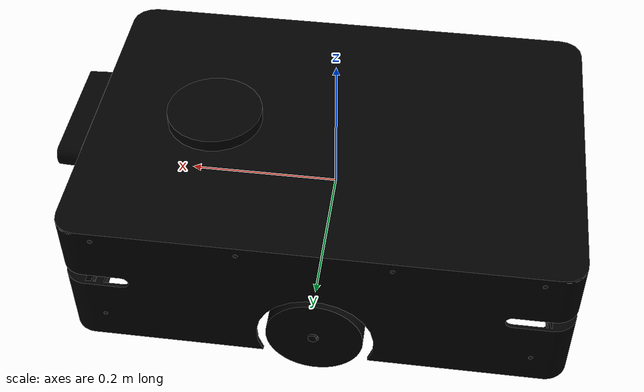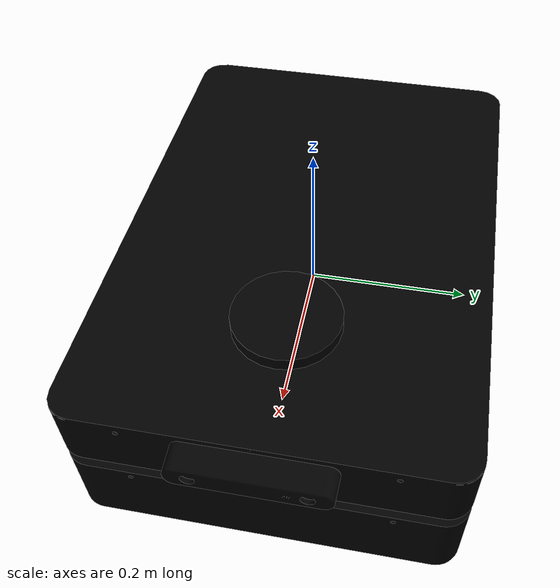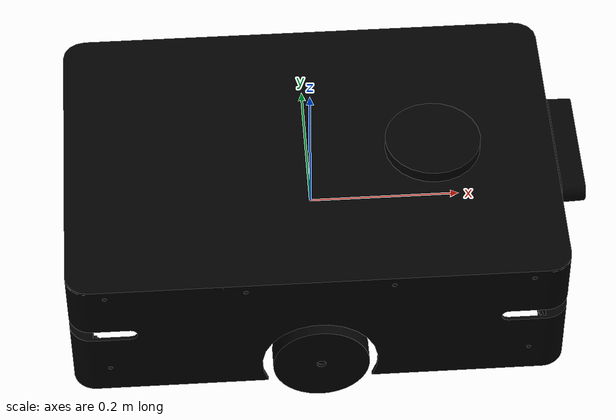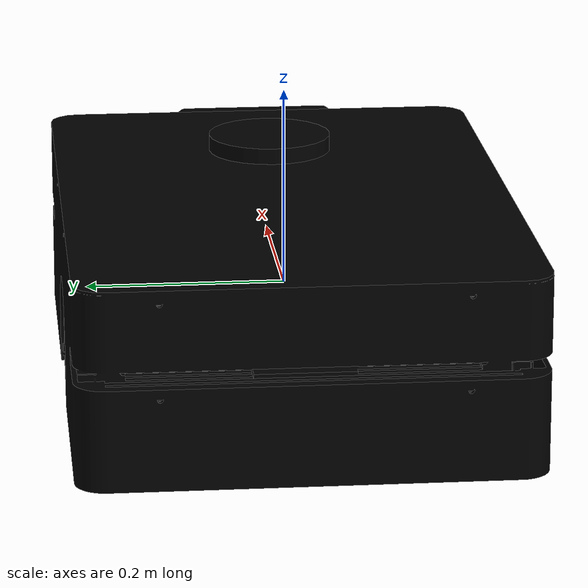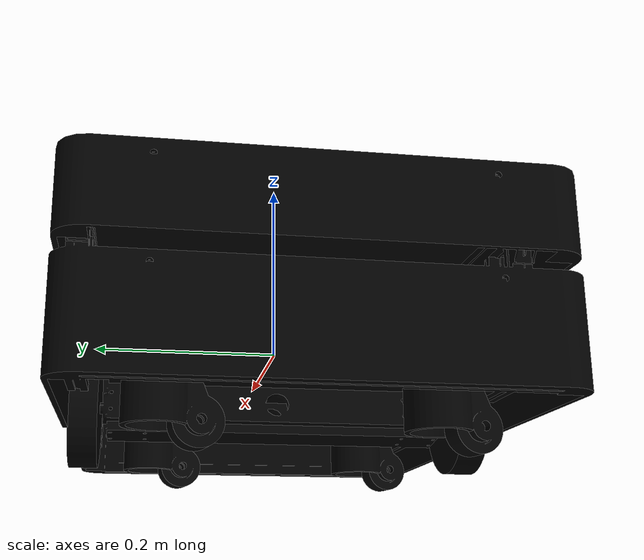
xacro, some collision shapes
<?xml version="1.0" encoding="UTF-8"?>
<robot name= "robomuse" xmlns:xacro="http://www.ros.org/wiki/xacro">
  <!--Include Files-->
  <xacro:include filename="$(find robomuse_description)/urdf/links_joints1.xacro" />
  <xacro:include filename="$(find robomuse_description)/urdf/robomuse_gazebo.xacro" />

<!--Robot description Started-->
<!--Ground base-->
  <link name="base_link"/>

    <joint name="base_joint" type="fixed">
      <parent link="base_link"/>
      <child link="chassis" />
      <origin xyz="0 0 -0.0615" rpy="0 0 0"/>
    </joint>
<!--Base Link-->
             <link name='chassis'>
               <pose>0 0 0.1 0 0 0</pose>

               <inertial>
<!--ALL MASSES IN KILOGRAM-->
                 <mass value="18.82331"/>
                 <origin xyz="0 0 0" rpy=" 0 0 0"/>
<!--ALL INERTIA VALUES IN KILOGRAM PER SQUARE METER-->
                 <inertia
                     ixx="6.31444528540" ixy="0.13255409258" ixz="-0.21848653940"
                     iyy="5.17315026122" iyz="-2.46428246318"
                     izz="1.97174252916"
                 />
               </inertial>

               <collision>
                 <origin xyz="0 0 0.0615" rpy=" 0 0 0"/>
                 <geometry>
                   <box size="0.645 0.450 0.190"/>
                 </geometry>
               </collision>

              <visual>
                 <origin xyz="0 0 -0.0615" rpy=" 0 0 0"/>
                 <geometry>
                   <mesh filename="package://robomuse_description/meshes/base1.dae" scale="10 10 10" />
                 </geometry>
             <material name="black"/>
               </visual>
             </link>

   <f_joint name="chassis_to_imu"
            type="fixed"
            axis_xyz="0 0 0"
            origin_rpy="0 0 0" origin_xyz="0.0 0 0.159"
            parent="chassis" child="imu_link" />
<link name="imu_link"/>

<!--joint between chassis and Left wheel-->
    <m_joint name="chassis_to_left_wheel"
             type="continuous"
             axis_xyz="0 0 1" axis_rpy="0 0 0"
             limit_e="1000" limit_v="1000"
             damping="1.0" friction="1.0"
             origin_rpy="-1.57 0 0" origin_xyz="0 0.195 -0.00615"
             parent="chassis" child="left_wheel"/>
<!-- inertia values are added by 0.1 in both left and right wheel to avoid collapsing of model in gazebo-->
<!--Left Wheel-->
  <m_link_cylinder name="left_wheel"
                   origin_rpy="0 0 0" origin_xyz="0 0 0.027"
                   mass="0.10441"
                   ixx="0.1000000042" ixy="0" ixz="0"
                   iyy="0.1000000042" iyz="0"
                   izz="0.1000000040"
                   radius="0.0666" length="0.05"
                   material="black"
                   filename="package://robomuse_description/meshes/wheel.dae" scale="1 1 1"/>

<!--joint between chassis and Right Wheel-->
<m_joint name="chassis_to_right_wheel"
               type="continuous"
               axis_xyz="0 0 1"
               axis_rpy="0 0 0"
               limit_e="1000" limit_v="1000"
               damping="1.0" friction="1.0"
               origin_rpy="-1.57 0 0" origin_xyz="0 -0.225 -0.00615"
               parent="chassis" child="right_wheel" />

<!--Right Wheel-->
<m_link_cylinder name="right_wheel"
                   origin_rpy="0 0 0" origin_xyz="0 0 0.027"
                   mass="0.10441"
                   ixx="0.1000000042" ixy="0" ixz="0"
                   iyy="0.1000000042" iyz="0"
                   izz="0.1000000040"
                   radius="0.0666" length="0.05"
                   material="black"
                   filename="package://robomuse_description/meshes/wheel.dae" scale="1 1 1"/>

      <f_joint name="chassis_to_caster1"
               type="fixed"
               axis_xyz="0 0 0"
               origin_rpy="0 0 0" origin_xyz="0.171 0.134 -0.03"
               parent="chassis" child="caster1" />

<!--Caster 1,2,3,4 and there joints with Base Link-->
  <m_link_sphere name="caster1"
                 origin_rpy="1.5707 0 0" origin_xyz="0 0 0"
                 mass="0.45164"
                 ixx="0.100000005621" ixy="0.100000001310" ixz="0.100000001649"
                 iyy="0.100000004345" iyz="0.100000002360"
                 izz="0.100000003315"
                 radius="0.0425"
                 material="black"
                 filename="package://robomuse_description/meshes/caster1.dae" scale="1 1 1"/>

      <f_joint name="chassis_to_caster2"
               type="fixed"
               axis_xyz="0 0 0"
               origin_rpy="0 0 0" origin_xyz="0.171 -0.134 -0.03"
               parent="chassis" child="caster2" />

  <m_link_sphere name="caster2"
                 origin_rpy="1.5707 0 0" origin_xyz="0 0 0"
                 mass="0.45164"
                 ixx="0.100000005621" ixy="0.100000001310" ixz="0.100000001649"
                 iyy="0.100000004345" iyz="0.100000002360"
                 izz="0.100000003315"
                 radius="0.0425"
                 material="black"
                 filename="package://robomuse_description/meshes/caster1.dae" scale="1 1 1"/>

      <f_joint name="chassis_to_caster3"
               type="fixed"
               axis_xyz="0 0 0"
               origin_rpy="0 0 0" origin_xyz="-0.171 -0.134 -0.03"
               parent="chassis" child="caster3" />

  <m_link_sphere name="caster3"
                 origin_rpy="1.5707 0 0" origin_xyz="0 0 0"
                 mass="0.45164"
                 ixx="0.100000005621" ixy="0.100000001310" ixz="0.100000001649"
                 iyy="0.100000004345" iyz="0.100000002360"
                 izz="0.100000003315"
                 radius="0.0425"
                 material="black"
                 filename="package://robomuse_description/meshes/caster1.dae" scale="1 1 1"/>

      <f_joint name="chassis_to_caster4"
               type="fixed"
               axis_xyz="0 0 0"
               origin_rpy="0 0 0" origin_xyz="-0.171 0.134 -0.03"
               parent="chassis" child="caster4" />

  <m_link_sphere name="caster4"
                 origin_rpy="1.5707 0 0" origin_xyz="0 0 0"
                 mass="0.45164"
                 ixx="0.100000005621" ixy="0.100000001310" ixz="0.100000001649"
                 iyy="0.100000004345" iyz="0.100000002360"
                 izz="0.100000003315"
                 radius="0.0425"
                 material="black"
                 filename="package://robomuse_description/meshes/caster1.dae" scale="1 1 1"/>

<!--joint between chassis and rplidar-->
      <f_joint name="chassis_to_rplidar"
               type="fixed"
               axis_xyz="0 0 0"
               origin_rpy="0 0 0" origin_xyz="0.1625 0 0.159"
               parent="chassis" child="rplidar" />
<!--RP Lidar-->
  <m_link_cylinder name="rplidar"
                   origin_rpy="0 0 0" origin_xyz="0 0 0"
                   mass="0.10441"
                   ixx="0.1000000042" ixy="0" ixz="0"
                   iyy="0.1000000042" iyz="0"
                   izz="0.1000000040"
                   radius="0.0635" length="0.030"
                   material="black"
                   filename="package://robomuse_description/meshes/rplidar.dae" scale="1 1 1"/>

      <f_joint name="chassis_to_zed_camera"
               type="fixed"
               axis_xyz="0 0 1"
               origin_rpy="0 0 0" origin_xyz="0.3425 0 0.139"
               parent="chassis" child="zed_camera_link" />

  <m_link_cylinder name="zed_camera_link"
                   origin_rpy="0 0 0" origin_xyz="0 0 0"
                   mass="1e-5"
                   ixx="1e-6" ixy="0" ixz="0"
                   iyy="1e-6" iyz="0"
                   izz="1e-6"
                   radius="0.033" length="0.033"
                   material="black"
                   filename="package://robomuse_description/meshes/zed.dae" scale="1 1 1"/>

<!--Robot Description Endded-->

<!--Gazebo Plugin-->
<gazebo>
  <plugin name="gazebo_ros_control" filename="libgazebo_ros_control.so">
    <robotNamespace>/robomuse.xacro</robotNamespace>
  </plugin>
</gazebo>

</robot>

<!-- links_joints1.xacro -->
<robot xmlns:xacro="http://www.ros.org/wiki/xacro">
<!--Include Files-->
  <xacro:include filename="$(find robomuse_description)/urdf/common_properties.xacro" />
<!--macro for cylinder shaped links(r,lwheels and lidar)-->
 <xacro:macro name="m_link_cylinder" params="name origin_xyz origin_rpy radius length mass ixx ixy ixz iyy iyz izz filename scale material ">
  <link name="${name}">
    <inertial>            <!--Inertial valuse include origin, mass and inertias as per CAD model-->
      <mass value="${mass}" />
      <origin rpy="${origin_rpy}" xyz="${origin_xyz}" />
      <inertia ixx="${ixx}" ixy="${ixy}" ixz="${ixz}" iyy="${iyy}" iyz="${iyz}" izz="${izz}" /> <!-- Taken at the output coordinate system-->
    </inertial>
    <collision>           <!-- Collision values include dimensions and origin-->
      <origin rpy="${origin_rpy}" xyz="${origin_xyz}" />
      <geometry>
        <cylinder radius="${radius}" length="${length}" />
      </geometry>
    </collision>
    <visual>               <!-- Visual valuse include origin, material and mesh to make model look similar to real robot-->
      <origin rpy="${origin_rpy}" xyz="${origin_xyz}" />
      <geometry>
        <mesh filename="${filename}" scale="${scale}"/>
      </geometry>
      <material name="${material}"/>
    </visual>
  </link>
</xacro:macro>

<xacro:macro name="m_link_sphere" params="name origin_xyz origin_rpy radius mass ixx ixy ixz iyy iyz izz filename scale material">
 <link name="${name}">
   <inertial>            <!--Inertial valuse include origin, mass and inertias as per CAD model-->
     <mass value="${mass}" />
     <origin rpy="${origin_rpy}" xyz="${origin_xyz}" />
     <inertia ixx="${ixx}" ixy="${ixy}" ixz="${ixz}" iyy="${iyy}" iyz="${iyz}" izz="${izz}" />
   </inertial>
   <collision>          <!-- Collision values include dimensions and origin-->
     <origin rpy="${origin_rpy}" xyz="${origin_xyz}" />
     <geometry>
       <sphere radius="${radius}"/>
     </geometry>
   </collision>
   <visual>             <!-- Visual valuse include origin, material and mesh to make model look similar to real robot-->
     <origin rpy="${origin_rpy}" xyz="${origin_xyz}" />
     <geometry>
       <mesh filename="${filename}" scale="${scale}"/>
     </geometry>
     <material name="${material}"/>
   </visual>
 </link>
</xacro:macro>
<!-- macro of moving joints like l,rwheels-->
<!-- It includes parent link, child link, limits, axis, origin, dynamics and transmission of the robot-->
<xacro:macro name="m_joint" params="name type axis_xyz axis_rpy origin_rpy origin_xyz parent limit_e limit_v child damping friction ">
   <joint name="${name}" type="${type}">
     <axis xyz="${axis_xyz}" rpy="${axis_rpy}" />
     <limit effort="${limit_e}" velocity="${limit_v}" />
     <origin rpy="${origin_rpy}" xyz="${origin_xyz}" />
     <dynamics damping="${damping}" friction="${friction}" />
     <parent link="${parent}" />
     <child link="${child}" />
   </joint>
   <transmission name="trans_${name}">
     <type>transmission_interface/SimpleTransmission</type>
     <joint name="${name}">
       <hardwareInterface>hardware_interface/EffortJointInterface</hardwareInterface>
     </joint>
     <actuator name="motor_${name}">
       <hardwareInterface>hardware_interface/EffortJointInterface</hardwareInterface>
       <mechanicalReduction>1</mechanicalReduction>
     </actuator>
   </transmission>
 </xacro:macro>

 <!-- macro of fixed joints like casters and rplidar-->
 <!-- It includes parent link, child link, axis and origin of the robot-->
 <xacro:macro name="f_joint" params="name type axis_xyz origin_rpy origin_xyz parent child">
   <joint name="${name}" type="${type}">
     <axis xyz="${axis_xyz}" />
     <origin rpy="${origin_rpy}" xyz="${origin_xyz}" />
     <parent link="${parent}" />
     <child link="${child}" />
   </joint>
 </xacro:macro>

</robot>

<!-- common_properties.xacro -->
<robot name="xacro_properties" xmlns:xacro="http://www.ros.org/wiki/xacro">

  <material name="grey">
    <color rgba="0.5 0.5 0.5 1.0"/>
  </material>

  <material name="black">
    <color rgba="0.0 0.0 0.0 1.0"/>
  </material>

</robot>
